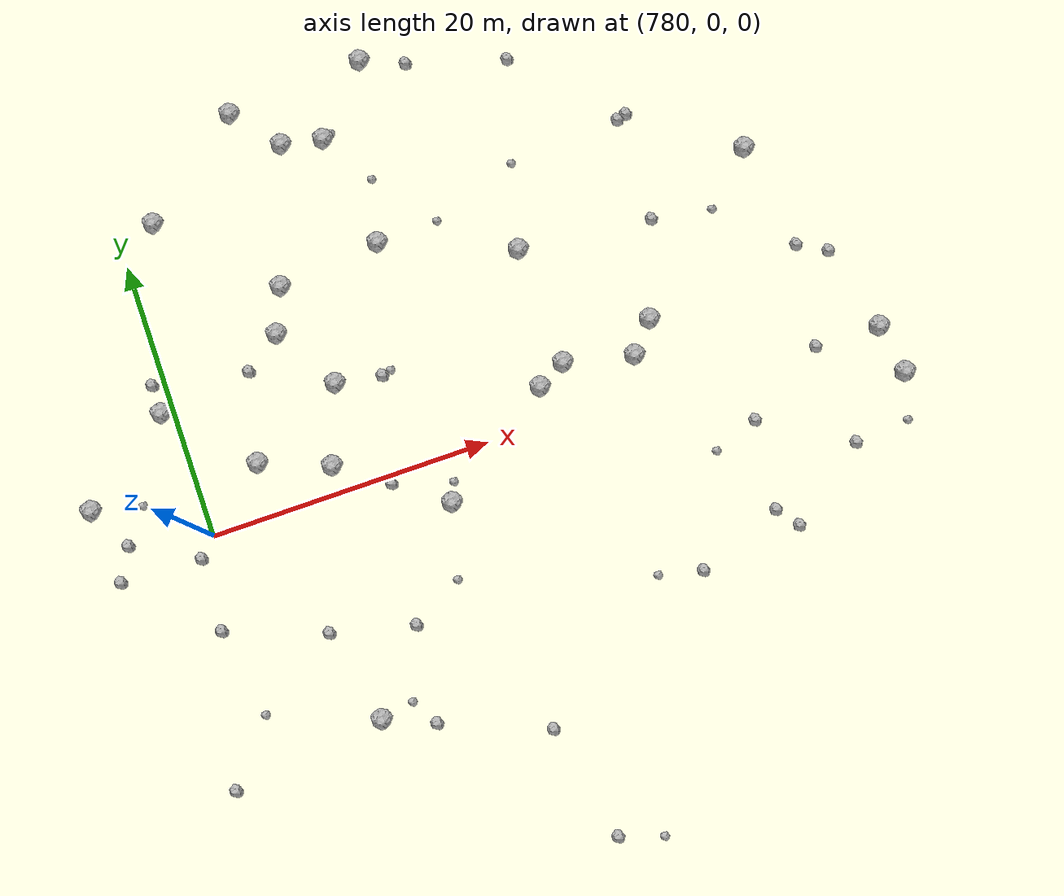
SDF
<sdf version="1.6">
 <world name="default">
  <include><uri>model://sun</uri></include>
  <model name="rock1_20_4">
   <include><uri>model://rock1</uri><pose>793.0435665732635 24.956842112111524 0.5 0 0 0</pose></include>
  </model>
  <model name="rock1_20_5">
   <include><uri>model://rock1</uri><pose>787.0807362407902 -15.551431542105876 0.5 0 0 0</pose></include>
  </model>
  <model name="rock1_20_6">
   <include><uri>model://rock1</uri><pose>813.5083759848842 4.537369118274597 0.5 0 0 0</pose></include>
  </model>
  <model name="rock1_20_7">
   <include><uri>model://rock1</uri><pose>790.270125511118 28.280159115235826 0.5 0 0 0</pose></include>
  </model>
  <model name="rock1_20_8">
   <include><uri>model://rock1</uri><pose>796.3069640302979 -3.1673976066875795 0.5 0 0 0</pose></include>
  </model>
  <model name="rock1_20_9">
   <include><uri>model://rock1</uri><pose>806.4793350394095 12.241858464251983 0.5 0 0 0</pose></include>
  </model>
  <model name="rock1_20_10">
   <include><uri>model://rock1</uri><pose>795.9803389964711 24.358004742412547 0.5 0 0 0</pose></include>
  </model>
  <model name="rock1_20_11">
   <include><uri>model://rock1</uri><pose>829.0471745190018 -4.781785449530229 0.5 0 0 0</pose></include>
  </model>
  <model name="rock1_20_12">
   <include><uri>model://rock1</uri><pose>804.6962991922559 2.477151207585713 0.5 0 0 0</pose></include>
  </model>
  <model name="rock1_20_13">
   <include><uri>model://rock1</uri><pose>797.2478275328247 15.950646107397326 0.5 0 0 0</pose></include>
  </model>
  <model name="rock1_20_14">
   <include><uri>model://rock1</uri><pose>784.4904279432171 3.7861200257286 0.5 0 0 0</pose></include>
  </model>
  <model name="rock1_20_15">
   <include><uri>model://rock1</uri><pose>788.519560370262 12.014844813114856 0.5 0 0 0</pose></include>
  </model>
  <model name="rock1_20_16">
   <include><uri>model://rock1</uri><pose>782.7349974829016 22.383793081271463 0.5 0 0 0</pose></include>
  </model>
  <model name="rock1_20_17">
   <include><uri>model://rock1</uri><pose>806.7576453912073 3.5802988359638164 0.5 0 0 0</pose></include>
  </model>
  <model name="rock1_20_18">
   <include><uri>model://rock1</uri><pose>789.8268329646088 15.155377741899557 0.5 0 0 0</pose></include>
  </model>
  <model name="rock1_20_19">
   <include><uri>model://rock1</uri><pose>779.2372948953692 9.275062159045916 0.5 0 0 0</pose></include>
  </model>
  <model name="rock1_20_20">
   <include><uri>model://rock1</uri><pose>800.2576873685824 29.03961824006938 0.5 0 0 0</pose></include>
  </model>
  <model name="rock1_20_21">
   <include><uri>model://rock1</uri><pose>828.5024688165577 -1.1757133888641391 0.5 0 0 0</pose></include>
  </model>
  <model name="rock1_20_22">
   <include><uri>model://rock1</uri><pose>811.6624621017114 2.465645940577261 0.5 0 0 0</pose></include>
  </model>
  <model name="rock1_20_23">
   <include><uri>model://rock1</uri><pose>772.6490686907089 4.342197566997541 0.5 0 0 0</pose></include>
  </model>
  <model name="rock1_20_24">
   <include><uri>model://rock1</uri><pose>824.0464324097683 14.0212451341812 0.5 0 0 0</pose></include>
  </model>
  <model name="rock1_20_25">
   <include><uri>model://rock1</uri><pose>791.3000318258282 7.3727967644731365 0.5 0 0 0</pose></include>
  </model>
  <model name="rock1_20_26">
   <include><uri>model://rock1</uri><pose>789.299349490222 1.9393984961339257 0.5 0 0 0</pose></include>
  </model>
  <model name="rock2_20_0">
   <include><uri>model://rock2</uri><pose>785.8379679722624 10.115063850352534 0.3 0 0 0</pose></include>
  </model>
  <model name="rock2_20_1">
   <include><uri>model://rock2</uri><pose>816.2391242280476 18.92496066459048 0.3 0 0 0</pose></include>
  </model>
  <model name="rock2_20_2">
   <include><uri>model://rock2</uri><pose>794.5439501068955 6.827743469025748 0.3 0 0 0</pose></include>
  </model>
  <model name="rock2_20_3">
   <include><uri>model://rock2</uri><pose>811.0634128128947 -13.214168808197844 0.3 0 0 0</pose></include>
  </model>
  <model name="rock2_20_4">
   <include><uri>model://rock2</uri><pose>816.0670861006002 11.285068591945716 0.3 0 0 0</pose></include>
  </model>
  <model name="rock2_20_5">
   <include><uri>model://rock2</uri><pose>825.089022818741 6.2149115754624304 0.3 0 0 0</pose></include>
  </model>
  <model name="rock2_20_6">
   <include><uri>model://rock2</uri><pose>823.8204001363357 -1.0938159301652384 0.3 0 0 0</pose></include>
  </model>
  <model name="rock2_20_7">
   <include><uri>model://rock2</uri><pose>778.7953335647526 -1.2502335208243878 0.3 0 0 0</pose></include>
  </model>
  <model name="rock2_20_8">
   <include><uri>model://rock2</uri><pose>816.9356908209592 19.130032254547388 0.3 0 0 0</pose></include>
  </model>
  <model name="rock2_20_9">
   <include><uri>model://rock2</uri><pose>817.2116592509457 -10.901459064466898 0.3 0 0 0</pose></include>
  </model>
  <model name="rock2_20_10">
   <include><uri>model://rock2</uri><pose>792.7645245270414 -0.5561037421611417 0.3 0 0 0</pose></include>
  </model>
  <model name="rock2_20_11">
   <include><uri>model://rock2</uri><pose>774.299185305257 1.2189061965265822 0.3 0 0 0</pose></include>
  </model>
  <model name="rock2_20_12">
   <include><uri>model://rock2</uri><pose>818.0264165147189 -4.590202308667852 0.3 0 0 0</pose></include>
  </model>
  <model name="rock2_20_13">
   <include><uri>model://rock2</uri><pose>790.4952009594747 -17.03901229392026 0.3 0 0 0</pose></include>
  </model>
  <model name="rock2_20_14">
   <include><uri>model://rock2</uri><pose>803.2882354914128 27.822029474886214 0.3 0 0 0</pose></include>
  </model>
  <model name="rock2_20_15">
   <include><uri>model://rock2</uri><pose>810.2850930064585 25.75467897831144 0.3 0 0 0</pose></include>
  </model>
  <model name="rock2_20_16">
   <include><uri>model://rock2</uri><pose>797.8122096857817 -19.97280841968769 0.3 0 0 0</pose></include>
  </model>
  <model name="rock2_20_17">
   <include><uri>model://rock2</uri><pose>785.5008509703653 -8.909735788316233 0.3 0 0 0</pose></include>
  </model>
  <model name="rock2_20_18">
   <include><uri>model://rock2</uri><pose>824.1034965457015 -8.332130777769017 0.3 0 0 0</pose></include>
  </model>
  <model name="rock2_20_19">
   <include><uri>model://rock2</uri><pose>773.0789021479873 -1.0198170197713452 0.3 0 0 0</pose></include>
  </model>
  <model name="rock2_20_20">
   <include><uri>model://rock2</uri><pose>818.3654263836116 -12.434922794511493 0.3 0 0 0</pose></include>
  </model>
  <model name="rock2_20_21">
   <include><uri>model://rock2</uri><pose>791.3003522884172 -10.321953713122618 0.3 0 0 0</pose></include>
  </model>
  <model name="rock2_20_22">
   <include><uri>model://rock2</uri><pose>827.0904692809858 5.060908128306558 0.3 0 0 0</pose></include>
  </model>
  <model name="rock2_20_23">
   <include><uri>model://rock2</uri><pose>778.6035925723012 -6.399614514594884 0.3 0 0 0</pose></include>
  </model>
  <model name="rock2_20_24">
   <include><uri>model://rock2</uri><pose>776.2872127790395 -16.88683411706519 0.3 0 0 0</pose></include>
  </model>
  <model name="rock2_20_25">
   <include><uri>model://rock2</uri><pose>799.5570890286482 -28.075086499636573 0.3 0 0 0</pose></include>
  </model>
  <model name="rock2_20_26">
   <include><uri>model://rock2</uri><pose>779.1758675609778 11.376047799332092 0.3 0 0 0</pose></include>
  </model>
  <model name="rock3_20_0">
   <include><uri>model://rock3</uri><pose>814.749737863923 -5.778916699735991 0.2 0 0 0</pose></include>
  </model>
  <model name="rock3_20_1">
   <include><uri>model://rock3</uri><pose>802.5103228256605 -29.116387210592627 0.2 0 0 0</pose></include>
  </model>
  <model name="rock3_20_2">
   <include><uri>model://rock3</uri><pose>794.9227836934531 -8.358020292430101 0.2 0 0 0</pose></include>
  </model>
  <model name="rock3_20_3">
   <include><uri>model://rock3</uri><pose>789.3691282282323 -15.18230771422165 0.2 0 0 0</pose></include>
  </model>
  <model name="rock3_20_4">
   <include><uri>model://rock3</uri><pose>776.0606485863447 3.5180230733121007 0.2 0 0 0</pose></include>
  </model>
  <model name="rock3_20_5">
   <include><uri>model://rock3</uri><pose>828.0514153872824 -8.047465927879756 0.2 0 0 0</pose></include>
  </model>
  <model name="rock3_20_6">
   <include><uri>model://rock3</uri><pose>779.6850184725996 -12.769611999270413 0.2 0 0 0</pose></include>
  </model>
  <model name="rock3_20_7">
   <include><uri>model://rock3</uri><pose>796.6077323790917 24.610040401837473 0.2 0 0 0</pose></include>
  </model>
  <model name="rock3_20_8">
   <include><uri>model://rock3</uri><pose>795.2113439254495 6.983760553155612 0.2 0 0 0</pose></include>
  </model>
  <model name="rock3_20_9">
   <include><uri>model://rock3</uri><pose>808.0375520523382 18.33429538618593 0.2 0 0 0</pose></include>
  </model>
  <model name="rock3_20_10">
   <include><uri>model://rock3</uri><pose>798.2963664450428 20.45716381726521 0.2 0 0 0</pose></include>
  </model>
  <model name="rock3_20_11">
   <include><uri>model://rock3</uri><pose>820.3699055105633 10.544472476116312 0.2 0 0 0</pose></include>
  </model>
  <model name="rock3_20_12">
   <include><uri>model://rock3</uri><pose>808.0081103437267 -12.551195117875086 0.2 0 0 0</pose></include>
  </model>
  <model name="rock3_20_13">
   <include><uri>model://rock3</uri><pose>801.6930054571766 16.067129004781634 0.2 0 0 0</pose></include>
  </model>
  <model name="rock3_20_14">
   <include><uri>model://rock3</uri><pose>796.8560159838811 -1.8703416968255766 0.2 0 0 0</pose></include>
  </model>
 </world>
</sdf>
